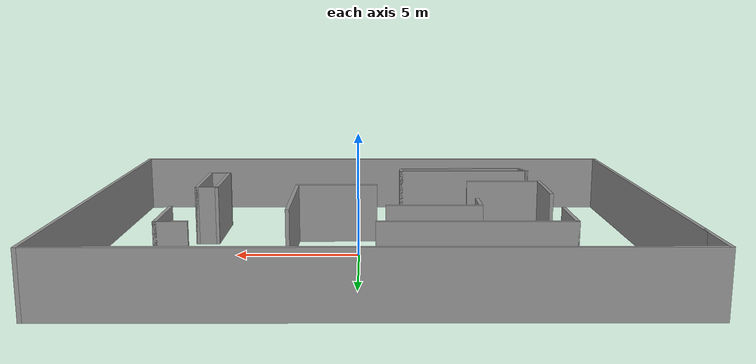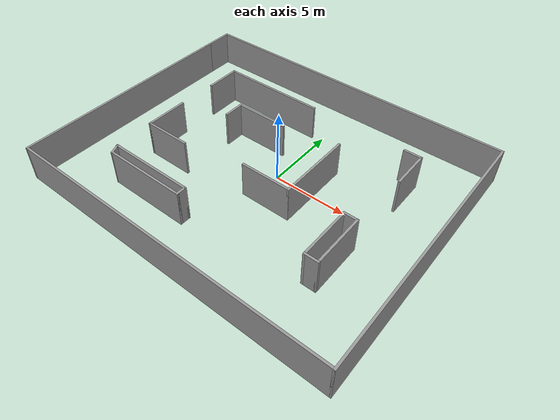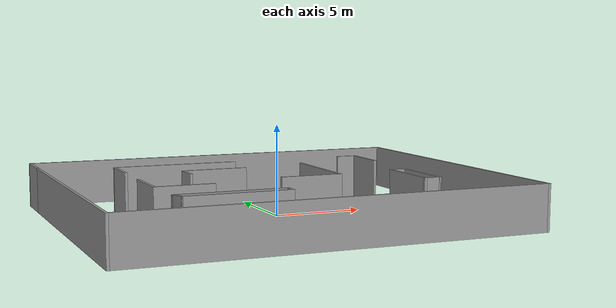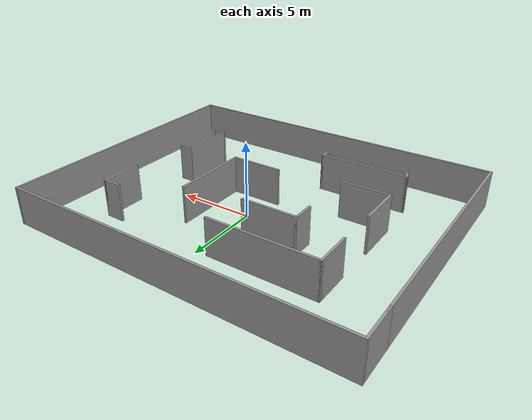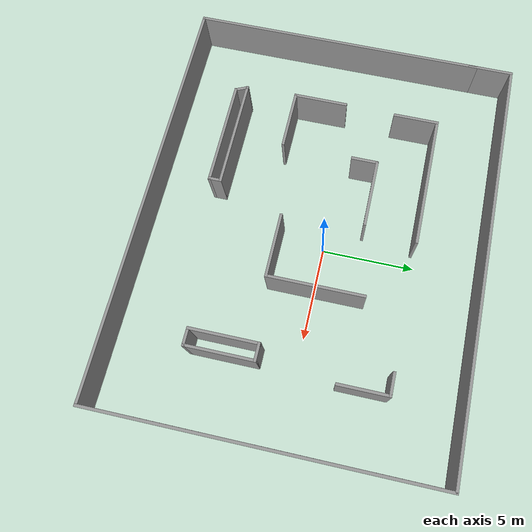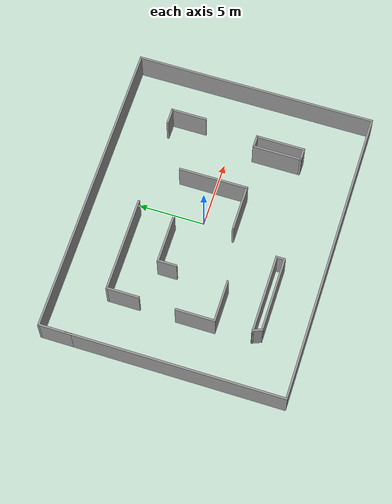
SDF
<?xml version='1.0'?>
<sdf version='1.7'>
  <model name='my_model'>
    <pose>-0.570493 -0.646556 0 0 -0 0</pose>
    <link name='Wall_1'>
      <collision name='Wall_1_Collision'>
        <geometry>
          <box>
            <size>16.25 0.15 2.5</size>
          </box>
        </geometry>
        <pose>0 0 1.25 0 -0 0</pose>
      </collision>
      <visual name='Wall_1_Visual'>
        <pose>0 0 1.25 0 -0 0</pose>
        <geometry>
          <box>
            <size>16.25 0.15 2.5</size>
          </box>
        </geometry>
        <material>
          <script>
            <uri>file://media/materials/scripts/gazebo.material</uri>
            <name>Gazebo/Grey</name>
          </script>
          <ambient>1 1 1 1</ambient>
        </material>
        <meta>
          <layer>0</layer>
        </meta>
      </visual>
      <pose>-11.3 -1 0 0 -0 -1.5708</pose>
    </link>
    <link name='Wall_11'>
      <collision name='Wall_11_Collision'>
        <geometry>
          <box>
            <size>1.5 0.15 2.5</size>
          </box>
        </geometry>
        <pose>0 0 1.25 0 -0 0</pose>
      </collision>
      <visual name='Wall_11_Visual'>
        <pose>0 0 1.25 0 -0 0</pose>
        <geometry>
          <box>
            <size>1.5 0.15 2.5</size>
          </box>
        </geometry>
        <material>
          <script>
            <uri>file://media/materials/scripts/gazebo.material</uri>
            <name>Gazebo/Grey</name>
          </script>
          <ambient>1 1 1 1</ambient>
        </material>
        <meta>
          <layer>0</layer>
        </meta>
      </visual>
      <pose>-4.15871 1.9205 0 0 -0 1.5708</pose>
    </link>
    <link name='Wall_12'>
      <collision name='Wall_12_Collision'>
        <geometry>
          <box>
            <size>3.75 0.15 2.5</size>
          </box>
        </geometry>
        <pose>0 0 1.25 0 -0 0</pose>
      </collision>
      <visual name='Wall_12_Visual'>
        <pose>0 0 1.25 0 -0 0</pose>
        <geometry>
          <box>
            <size>3.75 0.15 2.5</size>
          </box>
        </geometry>
        <material>
          <script>
            <uri>file://media/materials/scripts/gazebo.material</uri>
            <name>Gazebo/Grey</name>
          </script>
          <ambient>1 1 1 1</ambient>
        </material>
        <meta>
          <layer>0</layer>
        </meta>
      </visual>
      <pose>-2.35871 2.5955 0 0 -0 0</pose>
    </link>
    <link name='Wall_14'>
      <collision name='Wall_14_Collision'>
        <geometry>
          <box>
            <size>3 0.15 2.5</size>
          </box>
        </geometry>
        <pose>0 0 1.25 0 -0 0</pose>
      </collision>
      <visual name='Wall_14_Visual'>
        <pose>0 0 1.25 0 -0 0</pose>
        <geometry>
          <box>
            <size>3 0.15 2.5</size>
          </box>
        </geometry>
        <material>
          <script>
            <uri>file://media/materials/scripts/gazebo.material</uri>
            <name>Gazebo/Grey</name>
          </script>
          <ambient>1 1 1 1</ambient>
        </material>
        <meta>
          <layer>0</layer>
        </meta>
      </visual>
      <pose>-7.3248 -1.19968 0 0 -0 -1.5708</pose>
    </link>
    <link name='Wall_15'>
      <collision name='Wall_15_Collision'>
        <geometry>
          <box>
            <size>3.25 0.15 2.5</size>
          </box>
        </geometry>
        <pose>0 0 1.25 0 -0 0</pose>
      </collision>
      <visual name='Wall_15_Visual'>
        <pose>0 0 1.25 0 -0 0</pose>
        <geometry>
          <box>
            <size>3.25 0.15 2.5</size>
          </box>
        </geometry>
        <material>
          <script>
            <uri>file://media/materials/scripts/gazebo.material</uri>
            <name>Gazebo/Grey</name>
          </script>
          <ambient>1 1 1 1</ambient>
        </material>
        <meta>
          <layer>0</layer>
        </meta>
      </visual>
      <pose>-5.7748 -2.62468 0 0 -0 0</pose>
    </link>
    <link name='Wall_17'>
      <collision name='Wall_17_Collision'>
        <geometry>
          <box>
            <size>6 0.15 2.5</size>
          </box>
        </geometry>
        <pose>0 0 1.25 0 -0 0</pose>
      </collision>
      <visual name='Wall_17_Visual'>
        <pose>0 0 1.25 0 -0 0</pose>
        <geometry>
          <box>
            <size>6 0.15 2.5</size>
          </box>
        </geometry>
        <material>
          <script>
            <uri>file://media/materials/scripts/gazebo.material</uri>
            <name>Gazebo/Grey</name>
          </script>
          <ambient>1 1 1 1</ambient>
        </material>
        <meta>
          <layer>0</layer>
        </meta>
      </visual>
      <pose>-4.29426 -5.40328 0 0 -0 0</pose>
    </link>
    <link name='Wall_18'>
      <collision name='Wall_18_Collision'>
        <geometry>
          <box>
            <size>0.75 0.15 2.5</size>
          </box>
        </geometry>
        <pose>0 0 1.25 0 -0 0</pose>
      </collision>
      <visual name='Wall_18_Visual'>
        <pose>0 0 1.25 0 -0 0</pose>
        <geometry>
          <box>
            <size>0.75 0.15 2.5</size>
          </box>
        </geometry>
        <material>
          <script>
            <uri>file://media/materials/scripts/gazebo.material</uri>
            <name>Gazebo/Grey</name>
          </script>
          <ambient>1 1 1 1</ambient>
        </material>
        <meta>
          <layer>0</layer>
        </meta>
      </visual>
      <pose>-1.36926 -5.70328 0 0 -0 -1.5708</pose>
    </link>
    <link name='Wall_19'>
      <collision name='Wall_19_Collision'>
        <geometry>
          <box>
            <size>5.75 0.15 2.5</size>
          </box>
        </geometry>
        <pose>0 0 1.25 0 -0 0</pose>
      </collision>
      <visual name='Wall_19_Visual'>
        <pose>0 0 1.25 0 -0 0</pose>
        <geometry>
          <box>
            <size>5.75 0.15 2.5</size>
          </box>
        </geometry>
        <material>
          <script>
            <uri>file://media/materials/scripts/gazebo.material</uri>
            <name>Gazebo/Grey</name>
          </script>
          <ambient>1 1 1 1</ambient>
        </material>
        <meta>
          <layer>0</layer>
        </meta>
      </visual>
      <pose>-4.16926 -6.00328 0 0 -0 3.14159</pose>
    </link>
    <link name='Wall_2'>
      <collision name='Wall_2_Collision'>
        <geometry>
          <box>
            <size>22.75 0.15 2.5</size>
          </box>
        </geometry>
        <pose>0 0 1.25 0 -0 0</pose>
      </collision>
      <visual name='Wall_2_Visual'>
        <pose>0 0 1.25 0 -0 0</pose>
        <geometry>
          <box>
            <size>22.75 0.15 2.5</size>
          </box>
        </geometry>
        <material>
          <script>
            <uri>file://media/materials/scripts/gazebo.material</uri>
            <name>Gazebo/Grey</name>
          </script>
          <ambient>1 1 1 1</ambient>
        </material>
        <meta>
          <layer>0</layer>
        </meta>
      </visual>
      <pose>0 -9.05 0 0 -0 0</pose>
    </link>
    <link name='Wall_20'>
      <collision name='Wall_20_Collision'>
        <geometry>
          <box>
            <size>0.8 0.15 2.5</size>
          </box>
        </geometry>
        <pose>0 0 1.25 0 -0 0</pose>
      </collision>
      <visual name='Wall_20_Visual'>
        <pose>0 0 1.25 0 -0 0</pose>
        <geometry>
          <box>
            <size>0.8 0.15 2.5</size>
          </box>
        </geometry>
        <material>
          <script>
            <uri>file://media/materials/scripts/gazebo.material</uri>
            <name>Gazebo/Grey</name>
          </script>
          <ambient>1 1 1 1</ambient>
        </material>
        <meta>
          <layer>0</layer>
        </meta>
      </visual>
      <pose>-7.09426 -5.70328 0 0 -0 1.96559</pose>
    </link>
    <link name='Wall_22'>
      <collision name='Wall_22_Collision'>
        <geometry>
          <box>
            <size>3.5 0.15 2.5</size>
          </box>
        </geometry>
        <pose>0 0 1.25 0 -0 0</pose>
      </collision>
      <visual name='Wall_22_Visual'>
        <pose>0 0 1.25 0 -0 0</pose>
        <geometry>
          <box>
            <size>3.5 0.15 2.5</size>
          </box>
        </geometry>
        <material>
          <script>
            <uri>file://media/materials/scripts/gazebo.material</uri>
            <name>Gazebo/Grey</name>
          </script>
          <ambient>1 1 1 1</ambient>
        </material>
        <meta>
          <layer>0</layer>
        </meta>
      </visual>
      <pose>1.56185 -1.77987 0 0 -0 0</pose>
    </link>
    <link name='Wall_23'>
      <collision name='Wall_23_Collision'>
        <geometry>
          <box>
            <size>5.25 0.15 2.5</size>
          </box>
        </geometry>
        <pose>0 0 1.25 0 -0 0</pose>
      </collision>
      <visual name='Wall_23_Visual'>
        <pose>0 0 1.25 0 -0 0</pose>
        <geometry>
          <box>
            <size>5.25 0.15 2.5</size>
          </box>
        </geometry>
        <material>
          <script>
            <uri>file://media/materials/scripts/gazebo.material</uri>
            <name>Gazebo/Grey</name>
          </script>
          <ambient>1 1 1 1</ambient>
        </material>
        <meta>
          <layer>0</layer>
        </meta>
      </visual>
      <pose>3.23685 0.77013 0 0 -0 1.5708</pose>
    </link>
    <link name='Wall_25'>
      <collision name='Wall_25_Collision'>
        <geometry>
          <box>
            <size>1.25 0.15 2.5</size>
          </box>
        </geometry>
        <pose>0 0 1.25 0 -0 0</pose>
      </collision>
      <visual name='Wall_25_Visual'>
        <pose>0 0 1.25 0 -0 0</pose>
        <geometry>
          <box>
            <size>1.25 0.15 2.5</size>
          </box>
        </geometry>
        <material>
          <script>
            <uri>file://media/materials/scripts/gazebo.material</uri>
            <name>Gazebo/Grey</name>
          </script>
          <ambient>1 1 1 1</ambient>
        </material>
        <meta>
          <layer>0</layer>
        </meta>
      </visual>
      <pose>7.19117 5.3966 0 0 -0 0</pose>
    </link>
    <link name='Wall_26'>
      <collision name='Wall_26_Collision'>
        <geometry>
          <box>
            <size>2.75 0.15 2.5</size>
          </box>
        </geometry>
        <pose>0 0 1.25 0 -0 0</pose>
      </collision>
      <visual name='Wall_26_Visual'>
        <pose>0 0 1.25 0 -0 0</pose>
        <geometry>
          <box>
            <size>2.75 0.15 2.5</size>
          </box>
        </geometry>
        <material>
          <script>
            <uri>file://media/materials/scripts/gazebo.material</uri>
            <name>Gazebo/Grey</name>
          </script>
          <ambient>1 1 1 1</ambient>
        </material>
        <meta>
          <layer>0</layer>
        </meta>
      </visual>
      <pose>7.74117 4.0966 0 0 -0 -1.5708</pose>
    </link>
    <link name='Wall_28'>
      <collision name='Wall_28_Collision'>
        <geometry>
          <box>
            <size>1 0.15 2.5</size>
          </box>
        </geometry>
        <pose>0 0 1.25 0 -0 0</pose>
      </collision>
      <visual name='Wall_28_Visual'>
        <pose>0 0 1.25 0 -0 0</pose>
        <geometry>
          <box>
            <size>1 0.15 2.5</size>
          </box>
        </geometry>
        <material>
          <script>
            <uri>file://media/materials/scripts/gazebo.material</uri>
            <name>Gazebo/Grey</name>
          </script>
          <ambient>1 1 1 1</ambient>
        </material>
        <meta>
          <layer>0</layer>
        </meta>
      </visual>
      <pose>7.06617 -1.28737 0 0 -0 0</pose>
    </link>
    <link name='Wall_29'>
      <collision name='Wall_29_Collision'>
        <geometry>
          <box>
            <size>3.75 0.15 2.5</size>
          </box>
        </geometry>
        <pose>0 0 1.25 0 -0 0</pose>
      </collision>
      <visual name='Wall_29_Visual'>
        <pose>0 0 1.25 0 -0 0</pose>
        <geometry>
          <box>
            <size>3.75 0.15 2.5</size>
          </box>
        </geometry>
        <material>
          <script>
            <uri>file://media/materials/scripts/gazebo.material</uri>
            <name>Gazebo/Grey</name>
          </script>
          <ambient>1 1 1 1</ambient>
        </material>
        <meta>
          <layer>0</layer>
        </meta>
      </visual>
      <pose>7.49117 -3.08737 0 0 -0 -1.5708</pose>
    </link>
    <link name='Wall_3'>
      <collision name='Wall_3_Collision'>
        <geometry>
          <box>
            <size>18.25 0.15 2.5</size>
          </box>
        </geometry>
        <pose>0 0 1.25 0 -0 0</pose>
      </collision>
      <visual name='Wall_3_Visual'>
        <pose>0 0 1.25 0 -0 0</pose>
        <geometry>
          <box>
            <size>18.25 0.15 2.5</size>
          </box>
        </geometry>
        <material>
          <script>
            <uri>file://media/materials/scripts/gazebo.material</uri>
            <name>Gazebo/Grey</name>
          </script>
          <ambient>1 1 1 1</ambient>
        </material>
        <meta>
          <layer>0</layer>
        </meta>
      </visual>
      <pose>11.3 -0 0 0 -0 1.5708</pose>
    </link>
    <link name='Wall_30'>
      <collision name='Wall_30_Collision'>
        <geometry>
          <box>
            <size>1 0.15 2.5</size>
          </box>
        </geometry>
        <pose>0 0 1.25 0 -0 0</pose>
      </collision>
      <visual name='Wall_30_Visual'>
        <pose>0 0 1.25 0 -0 0</pose>
        <geometry>
          <box>
            <size>1 0.15 2.5</size>
          </box>
        </geometry>
        <material>
          <script>
            <uri>file://media/materials/scripts/gazebo.material</uri>
            <name>Gazebo/Grey</name>
          </script>
          <ambient>1 1 1 1</ambient>
        </material>
        <meta>
          <layer>0</layer>
        </meta>
      </visual>
      <pose>7.06617 -4.88737 0 0 -0 3.14159</pose>
    </link>
    <link name='Wall_31'>
      <collision name='Wall_31_Collision'>
        <geometry>
          <box>
            <size>3.75 0.15 2.5</size>
          </box>
        </geometry>
        <pose>0 0 1.25 0 -0 0</pose>
      </collision>
      <visual name='Wall_31_Visual'>
        <pose>0 0 1.25 0 -0 0</pose>
        <geometry>
          <box>
            <size>3.75 0.15 2.5</size>
          </box>
        </geometry>
        <material>
          <script>
            <uri>file://media/materials/scripts/gazebo.material</uri>
            <name>Gazebo/Grey</name>
          </script>
          <ambient>1 1 1 1</ambient>
        </material>
        <meta>
          <layer>0</layer>
        </meta>
      </visual>
      <pose>6.64117 -3.08737 0 0 -0 1.5708</pose>
    </link>
    <link name='Wall_4'>
      <collision name='Wall_4_Collision'>
        <geometry>
          <box>
            <size>22.75 0.15 2.5</size>
          </box>
        </geometry>
        <pose>0 0 1.25 0 -0 0</pose>
      </collision>
      <visual name='Wall_4_Visual'>
        <pose>0 0 1.25 0 -0 0</pose>
        <geometry>
          <box>
            <size>22.75 0.15 2.5</size>
          </box>
        </geometry>
        <material>
          <script>
            <uri>file://media/materials/scripts/gazebo.material</uri>
            <name>Gazebo/Grey</name>
          </script>
          <ambient>1 1 1 1</ambient>
        </material>
        <meta>
          <layer>0</layer>
        </meta>
      </visual>
      <pose>0 9.05 0 0 -0 3.14159</pose>
    </link>
    <link name='Wall_5'>
      <collision name='Wall_5_Collision'>
        <geometry>
          <box>
            <size>2.5 0.15 2.5</size>
          </box>
        </geometry>
        <pose>0 0 1.25 0 -0 0</pose>
      </collision>
      <visual name='Wall_5_Visual'>
        <pose>0 0 1.25 0 -0 0</pose>
        <geometry>
          <box>
            <size>2.5 0.15 2.5</size>
          </box>
        </geometry>
        <material>
          <script>
            <uri>file://media/materials/scripts/gazebo.material</uri>
            <name>Gazebo/Grey</name>
          </script>
          <ambient>1 1 1 1</ambient>
        </material>
        <meta>
          <layer>0</layer>
        </meta>
      </visual>
      <pose>-11.3 7.875 0 0 -0 -1.5708</pose>
    </link>
    <link name='Wall_7'>
      <collision name='Wall_7_Collision'>
        <geometry>
          <box>
            <size>2.5 0.15 2.5</size>
          </box>
        </geometry>
        <pose>0 0 1.25 0 -0 0</pose>
      </collision>
      <visual name='Wall_7_Visual'>
        <pose>0 0 1.25 0 -0 0</pose>
        <geometry>
          <box>
            <size>2.5 0.15 2.5</size>
          </box>
        </geometry>
        <material>
          <script>
            <uri>file://media/materials/scripts/gazebo.material</uri>
            <name>Gazebo/Grey</name>
          </script>
          <ambient>1 1 1 1</ambient>
        </material>
        <meta>
          <layer>0</layer>
        </meta>
      </visual>
      <pose>-7.25444 4.2216 0 0 -0 -1.5708</pose>
    </link>
    <link name='Wall_9'>
      <collision name='Wall_9_Collision'>
        <geometry>
          <box>
            <size>7.25 0.15 2.5</size>
          </box>
        </geometry>
        <pose>0 0 1.25 0 -0 0</pose>
      </collision>
      <visual name='Wall_9_Visual'>
        <pose>0 0 1.25 0 -0 0</pose>
        <geometry>
          <box>
            <size>7.25 0.15 2.5</size>
          </box>
        </geometry>
        <material>
          <script>
            <uri>file://media/materials/scripts/gazebo.material</uri>
            <name>Gazebo/Grey</name>
          </script>
          <ambient>1 1 1 1</ambient>
        </material>
        <meta>
          <layer>0</layer>
        </meta>
      </visual>
      <pose>-3.70444 5.3966 0 0 -0 0</pose>
    </link>
    <static>1</static>
  </model>
</sdf>
